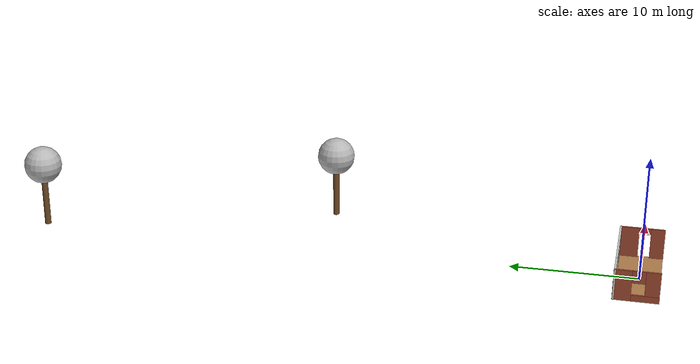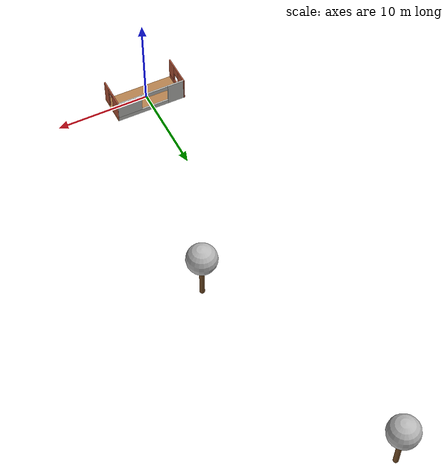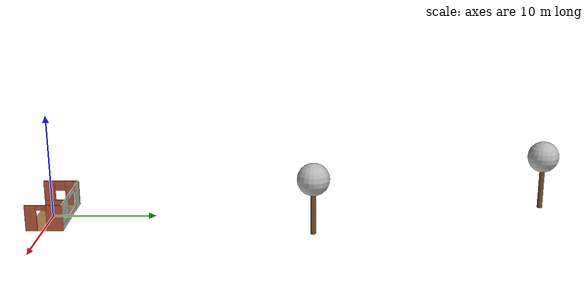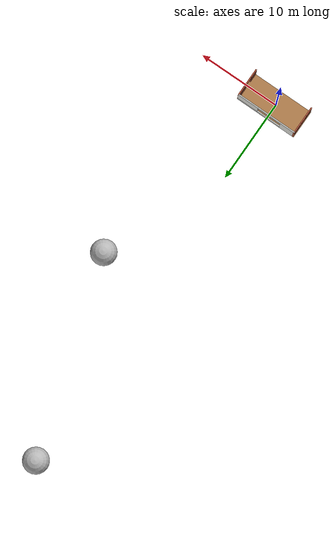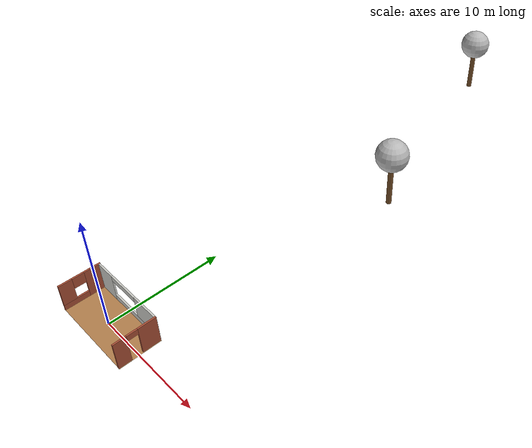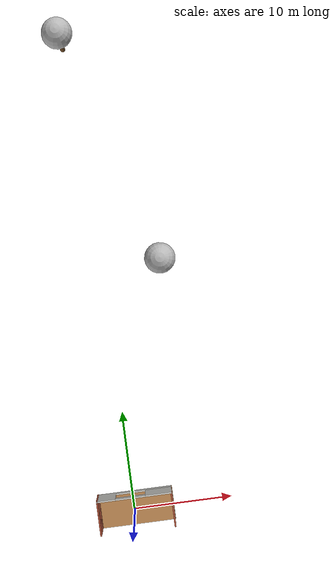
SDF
<sdf version="1.5">
 <world name="default">
  <light name="sun" type="directional">
   <cast_shadows>0</cast_shadows>
   <pose>0 0 10 0 -0 0</pose>
   <diffuse>0.38 0.38 0.38 1</diffuse>
   <specular>0.2 0.2 0.2 1</specular>
   <attenuation>
    <range>1000</range>
    <constant>0.9</constant>
    <linear>0.01</linear>
    <quadratic>0.001</quadratic>
   </attenuation>
   <direction>-0.5 0.1 -0.9</direction>
  </light>
  <gravity>0 0 -9.8</gravity>
  <magnetic_field>6e-06 2.3e-05 -4.2e-05</magnetic_field>
  <atmosphere type="adiabatic"/>
  <physics name="default_physics" default="0" type="ode">
   <max_step_size>0.001</max_step_size>
   <real_time_factor>1</real_time_factor>
   <real_time_update_rate>1000</real_time_update_rate>
  </physics>
  <scene>
   <grid>0</grid>
   <ambient>0.97 0.97 0.97 1</ambient>
   <shadows>0</shadows>
   <sky><time>17</time><clouds><speed>12</speed></clouds></sky>
  </scene>
  <audio><device>default</device></audio>
  <spherical_coordinates>
   <surface_model>EARTH_WGS84</surface_model>
   <latitude_deg>0</latitude_deg>
   <longitude_deg>0</longitude_deg>
   <elevation>0</elevation>
   <heading_deg>0</heading_deg>
  </spherical_coordinates>
  <model name="room">
   <pose>0.177078 0.135937 0 0 -0 0</pose>
   <link name="Wall_0">
    <pose>-0.007675 1.675 0 0 -0 0</pose>
    <visual name="Wall_0_Visual_0">
     <pose>-2.84738 0 1.25 0 -0 0</pose>
     <geometry><box><size>1.93225 0.15 2.5</size></box></geometry>
     <material>
      <script><uri>file://media/materials/scripts/gazebo.material</uri><name>Gazebo/CeilingTiled</name></script>
      <ambient>1 1 1 1</ambient>
     </material>
     <meta><layer>0</layer></meta>
    </visual>
    <collision name="Wall_0_Collision_0">
     <geometry><box><size>1.93225 0.15 2.5</size></box></geometry>
     <pose>-2.84738 0 1.25 0 -0 0</pose>
    </collision>
    <visual name="Wall_0_Visual_1">
     <pose>0.966125 0 0.25 0 -0 0</pose>
     <geometry><box><size>5.69476 0.15 0.5</size></box></geometry>
     <material>
      <script><uri>file://media/materials/scripts/gazebo.material</uri><name>Gazebo/CeilingTiled</name></script>
      <ambient>1 1 1 1</ambient>
     </material>
     <meta><layer>0</layer></meta>
    </visual>
    <collision name="Wall_0_Collision_1">
     <geometry><box><size>5.69476 0.15 0.5</size></box></geometry>
     <pose>0.966125 0 0.25 0 -0 0</pose>
    </collision>
    <visual name="Wall_0_Visual_2">
     <pose>2.46612 0 1.5 0 -0 0</pose>
     <geometry><box><size>2.69476 0.15 2</size></box></geometry>
     <material>
      <script><uri>file://media/materials/scripts/gazebo.material</uri><name>Gazebo/CeilingTiled</name></script>
      <ambient>1 1 1 1</ambient>
     </material>
     <meta><layer>0</layer></meta>
    </visual>
    <collision name="Wall_0_Collision_2">
     <geometry><box><size>2.69476 0.15 2</size></box></geometry>
     <pose>2.46612 0 1.5 0 -0 0</pose>
    </collision>
    <visual name="Wall_0_Visual_3">
     <pose>-0.381255 0 2.25 0 -0 0</pose>
     <geometry><box><size>3 0.15 0.5</size></box></geometry>
     <material>
      <script><uri>file://media/materials/scripts/gazebo.material</uri><name>Gazebo/CeilingTiled</name></script>
      <ambient>1 1 1 1</ambient>
     </material>
     <meta><layer>0</layer></meta>
    </visual>
    <collision name="Wall_0_Collision_3">
     <geometry><box><size>3 0.15 0.5</size></box></geometry>
     <pose>-0.381255 0 2.25 0 -0 0</pose>
    </collision>
   </link>
   <link name="Wall_3">
    <pose>-3.74615 0.015382 0 0 -0 -1.5708</pose>
    <visual name="Wall_3_Visual_0">
     <pose>-1.05647 0 1.25 0 -0 0</pose>
     <geometry><box><size>1.38707 0.15 2.5</size></box></geometry>
     <material>
      <script><uri>file://media/materials/scripts/gazebo.material</uri><name>Gazebo/Bricks</name></script>
      <ambient>1 1 1 1</ambient>
     </material>
     <meta><layer>0</layer></meta>
    </visual>
    <collision name="Wall_3_Collision_0">
     <geometry><box><size>1.38707 0.15 2.5</size></box></geometry>
     <pose>-1.05647 0 1.25 0 -0 0</pose>
    </collision>
    <visual name="Wall_3_Visual_1">
     <pose>0.693534 0 0.25 0 -0 0</pose>
     <geometry><box><size>2.11293 0.15 0.5</size></box></geometry>
     <material>
      <script><uri>file://media/materials/scripts/gazebo.material</uri><name>Gazebo/Bricks</name></script>
      <ambient>1 1 1 1</ambient>
     </material>
     <meta><layer>0</layer></meta>
    </visual>
    <collision name="Wall_3_Collision_1">
     <geometry><box><size>2.11293 0.15 0.5</size></box></geometry>
     <pose>0.693534 0 0.25 0 -0 0</pose>
    </collision>
    <visual name="Wall_3_Visual_2">
     <pose>1.19353 0 1.5 0 -0 0</pose>
     <geometry><box><size>1.11293 0.15 2</size></box></geometry>
     <material>
      <script><uri>file://media/materials/scripts/gazebo.material</uri><name>Gazebo/Bricks</name></script>
      <ambient>1 1 1 1</ambient>
     </material>
     <meta><layer>0</layer></meta>
    </visual>
    <collision name="Wall_3_Collision_2">
     <geometry><box><size>1.11293 0.15 2</size></box></geometry>
     <pose>1.19353 0 1.5 0 -0 0</pose>
    </collision>
    <visual name="Wall_3_Visual_3">
     <pose>0.137068 0 2 0 -0 0</pose>
     <geometry><box><size>1 0.15 1</size></box></geometry>
     <material>
      <script><uri>file://media/materials/scripts/gazebo.material</uri><name>Gazebo/Bricks</name></script>
      <ambient>1 1 1 1</ambient>
     </material>
     <meta><layer>0</layer></meta>
    </visual>
    <collision name="Wall_3_Collision_3">
     <geometry><box><size>1 0.15 1</size></box></geometry>
     <pose>0.137068 0 2 0 -0 0</pose>
    </collision>
   </link>
   <link name="Wall_5">
    <pose>3.74618 -0.015382 0 0 -0 -1.5708</pose>
    <visual name="Wall_5_Visual_0">
     <pose>-0.993011 0 1.25 0 -0 0</pose>
     <geometry><box><size>1.51398 0.15 2.5</size></box></geometry>
     <material>
      <script><uri>file://media/materials/scripts/gazebo.material</uri><name>Gazebo/Bricks</name></script>
      <ambient>1 1 1 1</ambient>
     </material>
     <meta><layer>0</layer></meta>
    </visual>
    <collision name="Wall_5_Collision_0">
     <geometry><box><size>1.51398 0.15 2.5</size></box></geometry>
     <pose>-0.993011 0 1.25 0 -0 0</pose>
    </collision>
    <visual name="Wall_5_Visual_1">
     <pose>1.20699 0 1.25 0 -0 0</pose>
     <geometry><box><size>1.08602 0.15 2.5</size></box></geometry>
     <material>
      <script><uri>file://media/materials/scripts/gazebo.material</uri><name>Gazebo/Bricks</name></script>
      <ambient>1 1 1 1</ambient>
     </material>
     <meta><layer>0</layer></meta>
    </visual>
    <collision name="Wall_5_Collision_1">
     <geometry><box><size>1.08602 0.15 2.5</size></box></geometry>
     <pose>1.20699 0 1.25 0 -0 0</pose>
    </collision>
    <visual name="Wall_5_Visual_2">
     <pose>0.213978 0 2.25 0 -0 0</pose>
     <geometry><box><size>0.9 0.15 0.5</size></box></geometry>
     <material>
      <script><uri>file://media/materials/scripts/gazebo.material</uri><name>Gazebo/Bricks</name></script>
      <ambient>1 1 1 1</ambient>
     </material>
     <meta><layer>0</layer></meta>
    </visual>
    <collision name="Wall_5_Collision_2">
     <geometry><box><size>0.9 0.15 0.5</size></box></geometry>
     <pose>0.213978 0 2.25 0 -0 0</pose>
    </collision>
   </link>
   <link name="Wall_1">
    <collision name="Wall_1_Collision">
     <geometry><box><size>7.75 3.5 0.001</size></box></geometry>
     <pose>0 0 0.0005 0 -0 0</pose>
    </collision>
    <visual name="Wall_1_Visual">
     <pose>0 0 0.0005 0 -0 0</pose>
     <geometry><box><size>7.75 3.5 0.001</size></box></geometry>
     <material>
      <script><uri>file://media/materials/scripts/gazebo.material</uri><name>Gazebo/Wood</name></script>
      <ambient>1 1 1 1</ambient>
     </material>
     <meta><layer>0</layer></meta>
    </visual>
    <pose>-0 -0 0 0 -0 3.14159</pose>
   </link>
   <static>1</static>
  </model>
  <model name="tree_simple0">
   <static>1</static>
   <link name="link">
    <pose>0 0 0.1 0 -0 0</pose>
    <collision name="collision_trunk">
     <pose>0 0 2 0 -0 0</pose>
     <geometry><cylinder><radius>0.25</radius><length>4</length></cylinder></geometry>
    </collision>
    <collision name="collision_treetop">
     <pose>0 0 5.2 0 -0 0</pose>
     <geometry><sphere><radius>1.5</radius></sphere></geometry>
    </collision>
    <visual name="trunk">
     <pose>0 0 2 0 -0 0</pose>
     <geometry><cylinder><radius>0.25</radius><length>4</length></cylinder></geometry>
     <material>
      <script>
       <uri>/workspace/src/armbot_description/worlds/models/tree/scripts</uri>
       <uri>/workspace/src/armbot_description/worlds/models/tree/materials/textures</uri>
       <name>TreeSimple/Trunk</name>
      </script>
     </material>
    </visual>
    <visual name="treetop">
     <pose>0 0 5.2 0 -0 0</pose>
     <geometry><sphere><radius>1.5</radius></sphere></geometry>
     <material>
      <script>
       <uri>/workspace/src/armbot_description/worlds/models/tree/scripts</uri>
       <uri>/workspace/src/armbot_description/worlds/models/tree/materials/textures</uri>
       <name>TreeSimple/Treetop</name>
      </script>
     </material>
    </visual>
   </link>
   <pose>5.810792 25.141045 0.173230 0 -0 0</pose>
  </model>
  <model name="tree_simple1">
   <static>1</static>
   <link name="link">
    <pose>0 0 0.1 0 -0 0</pose>
    <collision name="collision_trunk">
     <pose>0 0 2 0 -0 0</pose>
     <geometry><cylinder><radius>0.25</radius><length>4</length></cylinder></geometry>
    </collision>
    <collision name="collision_treetop">
     <pose>0 0 5.2 0 -0 0</pose>
     <geometry><sphere><radius>1.5</radius></sphere></geometry>
    </collision>
    <visual name="trunk">
     <pose>0 0 2 0 -0 0</pose>
     <geometry><cylinder><radius>0.25</radius><length>4</length></cylinder></geometry>
     <material>
      <script>
       <uri>/workspace/src/armbot_description/worlds/models/tree/scripts</uri>
       <uri>/workspace/src/armbot_description/worlds/models/tree/materials/textures</uri>
       <name>TreeSimple/Trunk</name>
      </script>
     </material>
    </visual>
    <visual name="treetop">
     <pose>0 0 5.2 0 -0 0</pose>
     <geometry><sphere><radius>1.5</radius></sphere></geometry>
     <material>
      <script>
       <uri>/workspace/src/armbot_description/worlds/models/tree/scripts</uri>
       <uri>/workspace/src/armbot_description/worlds/models/tree/materials/textures</uri>
       <name>TreeSimple/Treetop</name>
      </script>
     </material>
    </visual>
   </link>
   <pose>-1.183712 47.807770 0.173230 0 -0 0</pose>
  </model>
  <model name="cube0">
   <static>true</static>
   <pose>0.148605 0.074792 0.970 0 0 0</pose>
   <link name="link">
    <collision name="collision"><geometry><box><size>0.01 0.01 0.01</size></box></geometry></collision>
    <visual name="visual">
     <geometry><box><size>0.01 0.01 0.01</size></box></geometry>
     <material>
      <script><uri>file://media/materials/scripts/gazebo.material</uri><name>Gazebo/Grey</name></script>
      <ambient>0.435294 0.796078 0.67451 1</ambient>
     </material>
    </visual>
   </link>
  </model>
  <model name="cube1">
   <static>true</static>
   <pose>0.123347 -0.027777 0.970 0 0 0</pose>
   <link name="link">
    <collision name="collision"><geometry><box><size>0.01 0.01 0.01</size></box></geometry></collision>
    <visual name="visual">
     <geometry><box><size>0.01 0.01 0.01</size></box></geometry>
     <material>
      <script><uri>file://media/materials/scripts/gazebo.material</uri><name>Gazebo/Grey</name></script>
      <ambient>0.68 -0.20 0.179 1</ambient>
     </material>
    </visual>
   </link>
  </model>
  <model name="cube2">
   <static>true</static>
   <pose>0.101519 -0.098620 0.970 0 0 -0.7</pose>
   <link name="link">
    <collision name="collision"><geometry><box><size>0.01 0.01 0.01</size></box></geometry></collision>
    <visual name="visual">
     <geometry><box><size>0.01 0.01 0.01</size></box></geometry>
     <material>
      <script><uri>file://media/materials/scripts/gazebo.material</uri><name>Gazebo/Grey</name></script>
      <ambient>0.39 0.210 0.27 1</ambient>
     </material>
    </visual>
   </link>
  </model>
  <model name="cube3">
   <static>true</static>
   <pose>0.134862 -0.060991 0.970 0 0 0.3</pose>
   <link name="link">
    <collision name="collision"><geometry><box><size>0.01 0.01 0.01</size></box></geometry></collision>
    <visual name="visual">
     <geometry><box><size>0.01 0.01 0.01</size></box></geometry>
     <material>
      <script><uri>file://media/materials/scripts/gazebo.material</uri><name>Gazebo/Grey</name></script>
      <ambient>0.210 0.27 0.27 1</ambient>
     </material>
    </visual>
   </link>
  </model>
 </world>
</sdf>
